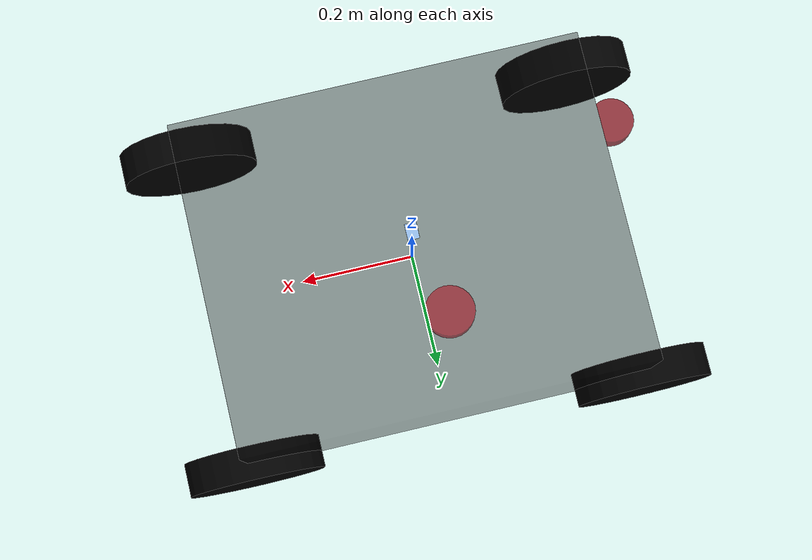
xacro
<?xml version="1.0"?>
<robot
    xmlns:xacro="http://www.ros.org/wiki/xacro"
    name="gigatron">

    <!-- Physical Constant Macros -->
    <xacro:property name="M_PI" value="3.1415926535897931" />

    <!-- Dimension Macros -->
    <xacro:property name="car_length" value="0.7239" /> <!-- 28.5" front to back wheel axes -->
    <xacro:property name="wheelbase_width" value="0.5842" />
    <xacro:property name="car_height" value="0.2794" />
    <xacro:property name="wheel_radius" value="0.12446" />
    <xacro:property name="wheel_width" value="0.06" />

    <!-- IMU placement relative to base_link -->
    <xacro:property name="imu_x" value="0" />
    <xacro:property name="imu_y" value="0" />
    <xacro:property name="imu_z" value="0.22862" />

    <!-- LIDAR placement relative to base_link -->
    <xacro:property name="lidar_x" value="-0.0254" />
    <xacro:property name="lidar_y" value="0.1524" />
    <xacro:property name="lidar_z" value="0.27942" />
    <xacro:property name="lidar_yaw" value="${M_PI}" />

    <!-- Rear LIDAR placement relative to base_link -->
    <xacro:property name="back_lidar_x" value="-0.4" />
    <xacro:property name="back_lidar_y" value="-0.15" />
    <xacro:property name="back_lidar_z" value="0" />
    <xacro:property name="back_lidar_yaw" value="0" />

    <!-- Physical Material Macros -->
    <material name="Grey">
        <color rgba="0 0 0 0.4"/>
    </material>
    <material name="Blue">
        <color rgba="0 0.3 0.9 0.3"/>
    </material>
    <material name="Black">
        <color rgba="0 0 0 0.9"/>
    </material>
    <material name="DarkGrey">
        <color rgba="0.5 0 0.05 0.75"/>
    </material>

    <!-- Main body -->
    <link name="base_link">
        <inertial>
            <mass value="0.2" />
            <origin xyz="0 0 0" />
            <inertia  ixx="0.2" ixy="0.0"  ixz="0.0"  iyy="0.2"  iyz="0.0"  izz="0.2" />
        </inertial>
        <visual>
            <origin xyz="0 0 0" rpy="0 0 0" />
            <geometry>
                <box size="${car_length} ${wheelbase_width} ${car_height}" />
            </geometry>
            <material name="Grey"/>
        </visual>
        <collision>
            <origin xyz="0 0 0" rpy="0 0 0" />
            <geometry>
                <box size="${car_length} ${wheelbase_width} ${car_height}" />
            </geometry>
        </collision>
    </link>
    <!-- base_footprint (ground) to base_link -->
    <link name="base_footprint" />
    <joint name="base_link_footprint_joint" type="fixed" >
        <parent link="base_footprint" />
        <child link="base_link" />
        <origin xyz="0 0 ${car_height/2-wheel_radius}" rpy="0 0 0" />
    </joint>

    <!-- the front left wheel -->
    <joint name="front_left_wheel_joint" type="revolute" >
        <limit lower="-0.76096" upper="0.76096" effort="100" velocity="10" />
        <axis xyz="0 0 1" />
        <parent link="base_link" />
        <child link="front_left_wheel_link" />
        <origin xyz="${car_length/2} ${wheelbase_width/2} -${wheel_radius}" rpy="0 0 0" />
    </joint>
    <link name="front_left_wheel_link">
        <inertial>
            <mass value="0.01" />
            <origin xyz="0 0 0" />
            <inertia  ixx="0.01" ixy="0.0"  ixz="0.0"  iyy="0.01"  iyz="0.0"  izz="0.01" />
        </inertial>
        <visual>
            <origin xyz="0 0 0" rpy="${M_PI/2} 0 0" />
            <geometry>
                <cylinder radius="${wheel_radius}" length="${wheel_width}" />
            </geometry>
            <material name="Black"/>
        </visual>
        <collision>
            <origin xyz="0 0 0" rpy="${M_PI/2} 0 0" />
            <geometry>
                <cylinder radius="${wheel_radius}" length="${wheel_width}" />
            </geometry>
        </collision>
    </link>

    <!-- the front right wheel -->
    <joint name="front_right_wheel_joint" type="revolute" >
        <limit lower="-0.76096" upper="0.76096" effort="100" velocity="10" />
        <axis xyz="0 0 1" />
        <parent link="base_link" />
        <child link="front_right_wheel_link" />
        <origin xyz="${car_length/2} -${wheelbase_width/2} -${wheel_radius}" rpy="0 0 0" />
    </joint>
    <link name="front_right_wheel_link">
        <inertial>
            <mass value="0.01" />
            <origin xyz="0 0 0" />
            <inertia  ixx="0.01" ixy="0.0"  ixz="0.0"  iyy="0.01"  iyz="0.0"  izz="0.01" />
        </inertial>
        <visual>
            <origin xyz="0 0 0" rpy="${M_PI/2} 0 0" />
            <geometry>
                <cylinder radius="${wheel_radius}" length="${wheel_width}" />
            </geometry>
            <material name="Black"/>
        </visual>
        <collision>
            <origin xyz="0 0 0" rpy="${M_PI/2} 0 0" />
            <geometry>
                <cylinder radius="${wheel_radius}" length="${wheel_width}" />
            </geometry>
        </collision>
    </link>

    <!-- the back left wheel -->
    <joint name="back_left_wheel_joint" type="fixed" >
        <parent link="base_link" />
        <child link="back_left_wheel_link" />
        <origin xyz="-${car_length/2} ${wheelbase_width/2} -${wheel_radius}" rpy="0 0 0" />
    </joint>
    <link name="back_left_wheel_link">
        <inertial>
            <mass value="0.01" />
            <origin xyz="0 0 0" />
            <inertia  ixx="0.01" ixy="0.0"  ixz="0.0"  iyy="0.01"  iyz="0.0"  izz="0.01" />
        </inertial>
        <visual>
            <origin xyz="0 0 0" rpy="${M_PI/2} 0 0" />
            <geometry>
                <cylinder radius="${wheel_radius}" length="${wheel_width}" />
            </geometry>
            <material name="Black"/>
        </visual>
        <collision>
            <origin xyz="0 0 0" rpy="${M_PI/2} 0 0" />
            <geometry>
                <cylinder radius="${wheel_radius}" length="${wheel_width}" />
            </geometry>
        </collision>
    </link>

    <!-- the back right wheel -->
    <joint name="back_right_wheel_joint" type="fixed" >
        <parent link="base_link" />
        <child link="back_right_wheel_link" />
        <origin xyz="-${car_length/2} -${wheelbase_width/2} -${wheel_radius}" rpy="0 0 0" />
    </joint>
    <link name="back_right_wheel_link">
        <inertial>
            <mass value="0.01" />
            <origin xyz="0 0 0" />
            <inertia  ixx="0.01" ixy="0.0"  ixz="0.0"  iyy="0.01"  iyz="0.0"  izz="0.01" />
        </inertial>
        <visual>
            <origin xyz="0 0 0" rpy="${M_PI/2} 0 0" />
            <geometry>
                <cylinder radius="${wheel_radius}" length="${wheel_width}" />
            </geometry>
            <material name="Black"/>
        </visual>
        <collision>
            <origin xyz="0 0 0" rpy="${M_PI/2} 0 0" />
            <geometry>
                <cylinder radius="${wheel_radius}" length="${wheel_width}" />
            </geometry>
        </collision>
    </link>

    <!-- LIDAR -->
    <joint name="laser_base_mount_joint" type="fixed">
        <origin xyz="${lidar_x} ${lidar_y} ${lidar_z}" rpy="0 0 ${lidar_yaw}" />
        <parent link="base_link"/>
        <child link="laser_link"/>
    </joint>
    <link name="laser_link" type="fixed">
        <inertial>
            <mass value="0.1"/>
            <origin xyz="0 0 0.0"/>
            <inertia ixx="0.1" ixy="0" ixz="0" iyy="0.1" iyz="0" izz="0.1"/>
        </inertial>
        <visual>
            <origin rpy="0 0 0" xyz="0 0 0.02"/>
            <geometry>
                <cylinder radius="0.04" length="0.03175"/>
            </geometry>
            <material name="DarkGrey"/>
        </visual>
        <collision>
            <origin rpy="0 0 0" xyz="0 0 0.025"/>
            <geometry>
                <box size="0.05 0.05 0.05"/>
            </geometry>
        </collision>
    </link>

    <!-- BACK LIDAR -->
    <joint name="back_laser_base_mount_joint" type="fixed">
        <origin xyz="${back_lidar_x} ${back_lidar_y} ${back_lidar_z}" rpy="0 0 ${back_lidar_yaw}" />
        <parent link="base_link"/>
        <child link="back_laser_link"/>
    </joint>
    <link name="back_laser_link" type="fixed">
        <inertial>
            <mass value="0.1"/>
            <origin xyz="0 0 0.0"/>
            <inertia ixx="0.1" ixy="0" ixz="0" iyy="0.1" iyz="0" izz="0.1"/>
        </inertial>
        <visual>
            <origin rpy="0 0 0" xyz="0 0 0.02"/>
            <geometry>
                <cylinder radius="0.04" length="0.03175"/>
            </geometry>
            <material name="DarkGrey"/>
        </visual>
        <collision>
            <origin rpy="0 0 0" xyz="0 0 0.025"/>
            <geometry>
                <box size="0.05 0.05 0.05"/>
            </geometry>
        </collision>
    </link>

    <!-- IMU -->
    <joint name="imu_mount_joint" type="fixed">
        <origin xyz="${imu_x} ${imu_y} ${imu_z}" rpy="0 0 0" />
        <parent link="base_link"/>
        <child link="imu_link"/>
    </joint>
    <link name="imu_link" type="fixed">
        <inertial>
            <mass value="0.01" />
            <origin xyz="0 0 0" />
            <inertia  ixx="0.2" ixy="0.0"  ixz="0.0"  iyy="0.2"  iyz="0.0"  izz="0.2" />
        </inertial>
        <visual>
            <origin xyz="0 0 0" rpy="0 0 0" />
            <geometry>
                <box size="0.02 0.027 0.004" /> <!-- IMU dimensions -->
            </geometry>
            <material name="Blue"/>
        </visual>
        <collision>
            <origin xyz="0 0 0" rpy="0 0 0" />
            <geometry>
                <box size="${car_length} ${wheelbase_width} ${car_height}" />
            </geometry>
        </collision>
    </link>

</robot>
